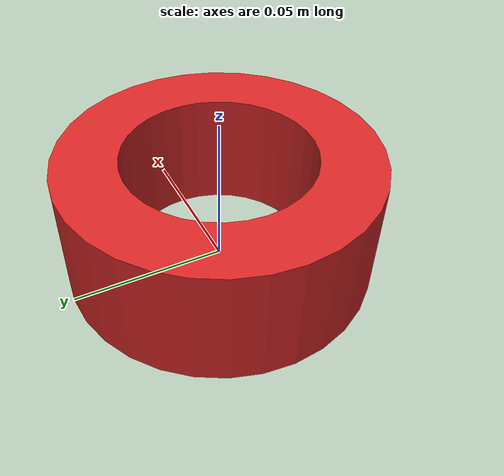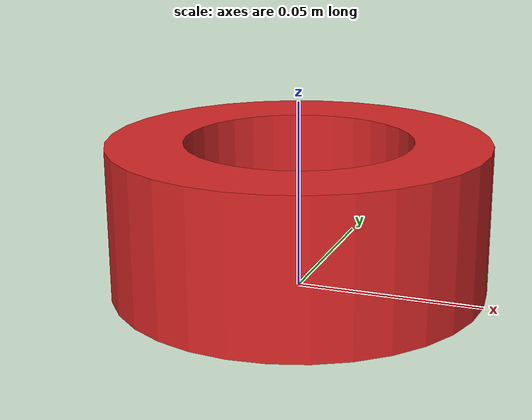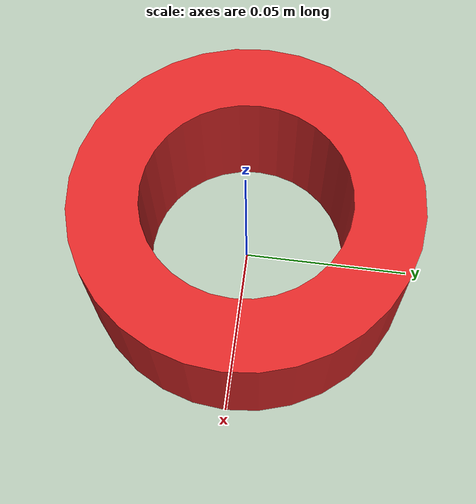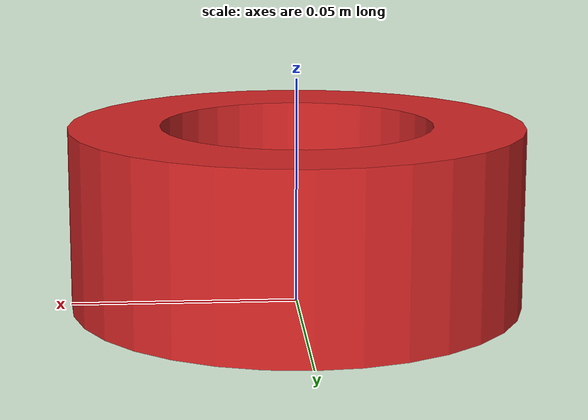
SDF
<?xml version="1.0"?>
<sdf version="1.9">
  <model name="ring_torus">
    <link name="link">
      <inertial>
        <mass>0.054</mass>
        <!-- CoM 在空心圆柱中心 z=h/2=0.020 -->
        <pose>0 0 0.020 0 0 0</pose>
        <inertia>
          <!-- 空心圆柱: Ixx=Iyy=m/12*(3(Ro²+Ri²)+h²), Izz=m/2*(Ro²+Ri²) -->
          <!-- Ro=0.05 Ri=0.03 h=0.04: Ixx=Iyy=5.31e-5  Izz=9.18e-5 -->
          <ixx>5.31e-05</ixx><ixy>0</ixy><ixz>0</ixz>
          <iyy>5.31e-05</iyy><iyz>0</iyz>
          <izz>9.18e-05</izz>
        </inertia>
      </inertial>

      <!-- 碰撞：精确网格 -->
      <collision name="collision">
        <geometry>
          <mesh>
            <uri>meshes/ring_torus.obj</uri>
            <scale>1 1 1</scale>
          </mesh>
        </geometry>
        <surface>
          <friction><ode><mu>0.7</mu><mu2>0.7</mu2></ode></friction>
        </surface>
      </collision>

      <!-- 视觉：同一网格，红色材质 -->
      <visual name="visual">
        <geometry>
          <mesh>
            <uri>meshes/ring_torus.obj</uri>
            <scale>1 1 1</scale>
          </mesh>
        </geometry>
        <material>
          <ambient>0.75 0.10 0.10 1</ambient>
          <diffuse>0.85 0.15 0.15 1</diffuse>
          <specular>0.30 0.05 0.05 1</specular>
        </material>
      </visual>
    </link>
  </model>
</sdf>
